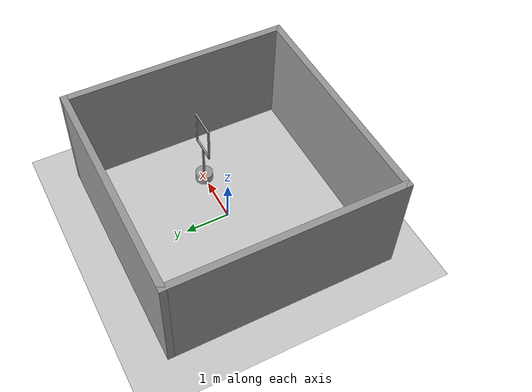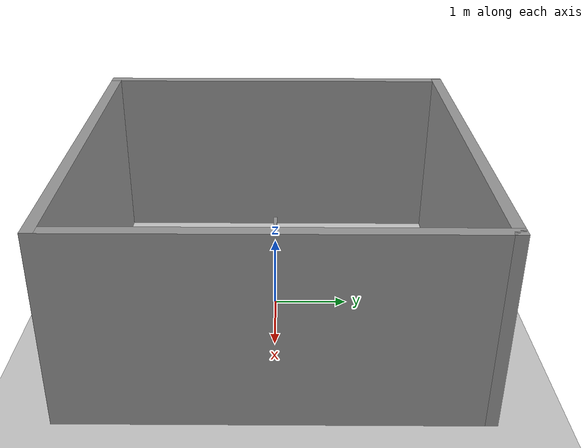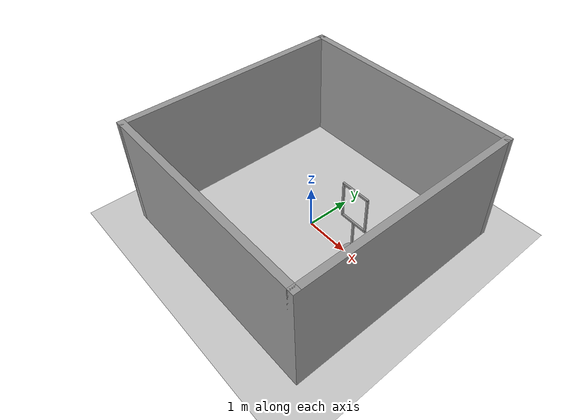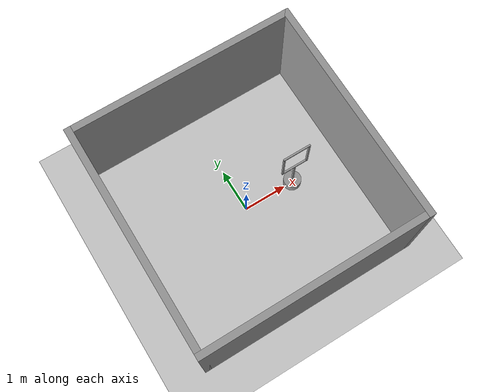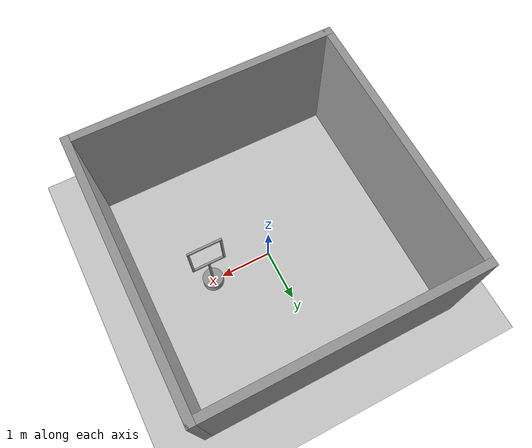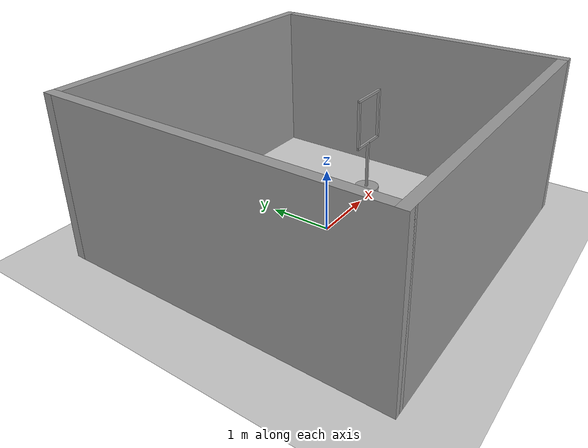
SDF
<sdf version="1.7">
 <world name="default">
  <light name="sun" type="directional">
   <pose>0 0 10 0 -0 0</pose>
   <diffuse>0.8 0.8 0.8 1</diffuse>
   <specular>0.2 0.2 0.2 1</specular>
   <attenuation>
    <range>1000</range>
    <constant>0.9</constant>
    <linear>0.01</linear>
    <quadratic>0.001</quadratic>
   </attenuation>
   <direction>-0.5 0.1 -0.9</direction>
   <spot><inner_angle>0</inner_angle><outer_angle>0</outer_angle><falloff>0</falloff></spot>
  </light>
  <model name="ground_plane">
   <static>1</static>
   <link name="link">
    <collision name="collision">
     <geometry><plane><normal>0 0 1</normal><size>100 100</size></plane></geometry>
     <surface>
      <contact><collide_bitmask>65535</collide_bitmask></contact>
      <friction><ode><mu>100</mu><mu2>50</mu2></ode></friction>
     </surface>
    </collision>
    <visual name="visual">
     <cast_shadows>0</cast_shadows>
     <geometry><plane><normal>0 0 1</normal><size>100 100</size></plane></geometry>
     <material>
      <script><uri>file://media/materials/scripts/gazebo.material</uri><name>Gazebo/Grey</name></script>
     </material>
    </visual>
   </link>
  </model>
  <gravity>0 0 -9.8</gravity>
  <magnetic_field>6e-06 2.3e-05 -4.2e-05</magnetic_field>
  <atmosphere type="adiabatic"/>
  <physics type="ode">
   <max_step_size>0.001</max_step_size>
   <real_time_factor>1</real_time_factor>
   <real_time_update_rate>1000</real_time_update_rate>
  </physics>
  <scene><ambient>0.4 0.4 0.4 1</ambient><background>0.7 0.7 0.7 1</background><shadows>1</shadows></scene>
  <spherical_coordinates>
   <surface_model>EARTH_WGS84</surface_model>
   <latitude_deg>0</latitude_deg>
   <longitude_deg>0</longitude_deg>
   <elevation>0</elevation>
   <heading_deg>0</heading_deg>
  </spherical_coordinates>
  <model name="vicon_room">
   <link name="Wall_0">
    <collision name="Wall_0_Collision">
     <geometry><box><size>5.15 0.15 2.5</size></box></geometry>
     <pose>0 0 1.25 0 -0 0</pose>
    </collision>
    <visual name="Wall_0_Visual">
     <pose>0 0 1.25 0 -0 0</pose>
     <geometry><box><size>5.15 0.15 2.5</size></box></geometry>
     <material>
      <script><uri>file://media/materials/scripts/gazebo.material</uri><name>Gazebo/Grey</name></script>
      <ambient>1 1 1 1</ambient>
     </material>
     <meta><layer>0</layer></meta>
    </visual>
    <pose>0 -2.5 0 0 -0 0</pose>
   </link>
   <link name="Wall_1">
    <collision name="Wall_1_Collision">
     <geometry><box><size>5.15 0.15 2.5</size></box></geometry>
     <pose>0 0 1.25 0 -0 0</pose>
    </collision>
    <visual name="Wall_1_Visual">
     <pose>0 0 1.25 0 -0 0</pose>
     <geometry><box><size>5.15 0.15 2.5</size></box></geometry>
     <material>
      <script><uri>file://media/materials/scripts/gazebo.material</uri><name>Gazebo/Grey</name></script>
      <ambient>1 1 1 1</ambient>
     </material>
     <meta><layer>0</layer></meta>
    </visual>
    <pose>2.5 0 0 0 -0 1.5708</pose>
   </link>
   <link name="Wall_13">
    <collision name="Wall_13_Collision">
     <geometry><box><size>5.15 0.15 2.5</size></box></geometry>
     <pose>0 0 1.25 0 -0 0</pose>
    </collision>
    <visual name="Wall_13_Visual">
     <pose>0 0 1.25 0 -0 0</pose>
     <geometry><box><size>5.15 0.15 2.5</size></box></geometry>
     <material>
      <script><uri>file://media/materials/scripts/gazebo.material</uri><name>Gazebo/Grey</name></script>
      <ambient>1 1 1 1</ambient>
     </material>
     <meta><layer>0</layer></meta>
    </visual>
    <pose>0 2.5 0 0 -0 3.14159</pose>
   </link>
   <link name="Wall_15">
    <collision name="Wall_15_Collision">
     <geometry><box><size>5.15 0.15 2.5</size></box></geometry>
     <pose>0 0 1.25 0 -0 0</pose>
    </collision>
    <visual name="Wall_15_Visual">
     <pose>0 0 1.25 0 -0 0</pose>
     <geometry><box><size>5.15 0.15 2.5</size></box></geometry>
     <material>
      <script><uri>file://media/materials/scripts/gazebo.material</uri><name>Gazebo/Grey</name></script>
      <ambient>1 1 1 1</ambient>
     </material>
     <meta><layer>0</layer></meta>
    </visual>
    <pose>-2.5 0 0 0 -0 -1.5708</pose>
   </link>
   <static>1</static>
  </model>
  <model name="gate_0">
   <link name="link_11">
    <inertial>
     <mass>1</mass>
     <inertia>
      <ixx>0.166667</ixx>
      <ixy>0</ixy>
      <ixz>0</ixz>
      <iyy>0.166667</iyy>
      <iyz>0</iyz>
      <izz>0.166667</izz>
     </inertia>
    </inertial>
    <pose>-0 -0 0.4 0 -0 0</pose>
    <visual name="visual">
     <geometry><box><size>0.04 0.04 0.8</size></box></geometry>
     <material>
      <lighting>1</lighting>
      <script><uri>file://media/materials/scripts/gazebo.material</uri><name>Gazebo/Grey</name></script>
      <shader type="pixel"><normal_map>__default__</normal_map></shader>
      <ambient>1 1 1 1</ambient>
      <diffuse>0.7 0.7 0.7 1</diffuse>
      <specular>0.01 0.01 0.01 1</specular>
      <emissive>0 0 0 1</emissive>
     </material>
    </visual>
    <collision name="collision">
     <geometry><box><size>0.04 0.04 0.8</size></box></geometry>
     <surface>
      <friction>
       <ode><mu>1</mu><mu2>1</mu2><fdir1>0 0 0</fdir1><slip1>0</slip1><slip2>0</slip2></ode>
       <torsional>
        <coefficient>1</coefficient>
        <patch_radius>0</patch_radius>
        <surface_radius>0</surface_radius>
        <use_patch_radius>1</use_patch_radius>
        <ode><slip>0</slip></ode>
       </torsional>
      </friction>
      <bounce><restitution_coefficient>0</restitution_coefficient><threshold>1e+06</threshold></bounce>
      <contact>
       <collide_without_contact>0</collide_without_contact>
       <collide_without_contact_bitmask>1</collide_without_contact_bitmask>
       <collide_bitmask>1</collide_bitmask>
       <ode>
        <soft_cfm>0</soft_cfm>
        <soft_erp>0.2</soft_erp>
        <kp>1e+13</kp>
        <kd>1</kd>
        <max_vel>0.01</max_vel>
        <min_depth>0</min_depth>
       </ode>
       <bullet>
        <split_impulse>1</split_impulse>
        <split_impulse_penetration_threshold>-0.01</split_impulse_penetration_threshold>
        <soft_cfm>0</soft_cfm>
        <soft_erp>0.2</soft_erp>
        <kp>1e+13</kp>
        <kd>1</kd>
       </bullet>
      </contact>
     </surface>
    </collision>
   </link>
   <link name="link_0">
    <inertial>
     <mass>1</mass>
     <inertia><ixx>0.145833</ixx><ixy>0</ixy><ixz>0</ixz><iyy>0.145833</iyy><iyz>0</iyz><izz>0.125</izz></inertia>
    </inertial>
    <pose>-0 0.3 -0.9 2e-06 3e-06 -0.000123</pose>
    <visual name="visual">
     <geometry><cylinder><radius>0.2</radius><length>0.2</length></cylinder></geometry>
     <material>
      <lighting>1</lighting>
      <script><uri>file://media/materials/scripts/gazebo.material</uri><name>Gazebo/Grey</name></script>
      <shader type="pixel"><normal_map>__default__</normal_map></shader>
      <ambient>0.3 0.3 0.3 1</ambient>
      <diffuse>0.7 0.7 0.7 1</diffuse>
      <specular>0.01 0.01 0.01 1</specular>
      <emissive>0 0 0 1</emissive>
     </material>
    </visual>
    <collision name="collision">
     <geometry><cylinder><radius>0.2</radius><length>0.2</length></cylinder></geometry>
     <surface>
      <friction>
       <ode><mu>1</mu><mu2>1</mu2><fdir1>0 0 0</fdir1><slip1>0</slip1><slip2>0</slip2></ode>
       <torsional>
        <coefficient>1</coefficient>
        <patch_radius>0</patch_radius>
        <surface_radius>0</surface_radius>
        <use_patch_radius>1</use_patch_radius>
        <ode><slip>0</slip></ode>
       </torsional>
      </friction>
      <bounce><restitution_coefficient>0</restitution_coefficient><threshold>1e+06</threshold></bounce>
      <contact>
       <collide_without_contact>0</collide_without_contact>
       <collide_without_contact_bitmask>1</collide_without_contact_bitmask>
       <collide_bitmask>1</collide_bitmask>
       <ode>
        <soft_cfm>0</soft_cfm>
        <soft_erp>0.2</soft_erp>
        <kp>1e+13</kp>
        <kd>1</kd>
        <max_vel>0.01</max_vel>
        <min_depth>0</min_depth>
       </ode>
       <bullet>
        <split_impulse>1</split_impulse>
        <split_impulse_penetration_threshold>-0.01</split_impulse_penetration_threshold>
        <soft_cfm>0</soft_cfm>
        <soft_erp>0.2</soft_erp>
        <kp>1e+13</kp>
        <kd>1</kd>
       </bullet>
      </contact>
     </surface>
    </collision>
   </link>
   <link name="link_11_clone">
    <inertial>
     <mass>1</mass>
     <inertia>
      <ixx>0.166667</ixx>
      <ixy>0</ixy>
      <ixz>0</ixz>
      <iyy>0.166667</iyy>
      <iyz>0</iyz>
      <izz>0.166667</izz>
     </inertia>
    </inertial>
    <pose>-0 0.6 0.4 0 -0 0</pose>
    <visual name="visual">
     <geometry><box><size>0.04 0.04 0.8</size></box></geometry>
     <material>
      <lighting>1</lighting>
      <script><uri>file://media/materials/scripts/gazebo.material</uri><name>Gazebo/Grey</name></script>
      <shader type="pixel"><normal_map>__default__</normal_map></shader>
      <ambient>1 1 1 1</ambient>
      <diffuse>0.7 0.7 0.7 1</diffuse>
      <specular>0.01 0.01 0.01 1</specular>
      <emissive>0 0 0 1</emissive>
     </material>
    </visual>
    <collision name="collision">
     <geometry><box><size>0.04 0.04 0.8</size></box></geometry>
     <surface>
      <friction>
       <ode><mu>1</mu><mu2>1</mu2><fdir1>0 0 0</fdir1><slip1>0</slip1><slip2>0</slip2></ode>
       <torsional>
        <coefficient>1</coefficient>
        <patch_radius>0</patch_radius>
        <surface_radius>0</surface_radius>
        <use_patch_radius>1</use_patch_radius>
        <ode><slip>0</slip></ode>
       </torsional>
      </friction>
      <bounce><restitution_coefficient>0</restitution_coefficient><threshold>1e+06</threshold></bounce>
      <contact>
       <collide_without_contact>0</collide_without_contact>
       <collide_without_contact_bitmask>1</collide_without_contact_bitmask>
       <collide_bitmask>1</collide_bitmask>
       <ode>
        <soft_cfm>0</soft_cfm>
        <soft_erp>0.2</soft_erp>
        <kp>1e+13</kp>
        <kd>1</kd>
        <max_vel>0.01</max_vel>
        <min_depth>0</min_depth>
       </ode>
       <bullet>
        <split_impulse>1</split_impulse>
        <split_impulse_penetration_threshold>-0.01</split_impulse_penetration_threshold>
        <soft_cfm>0</soft_cfm>
        <soft_erp>0.2</soft_erp>
        <kp>1e+13</kp>
        <kd>1</kd>
       </bullet>
      </contact>
     </surface>
    </collision>
   </link>
   <link name="link_11_clone_0">
    <inertial>
     <mass>1</mass>
     <inertia>
      <ixx>0.166667</ixx>
      <ixy>0</ixy>
      <ixz>0</ixz>
      <iyy>0.166667</iyy>
      <iyz>0</iyz>
      <izz>0.166667</izz>
     </inertia>
    </inertial>
    <pose>0 0.3 -0.4 2e-06 3e-06 -0.000123</pose>
    <visual name="visual">
     <geometry><box><size>0.04 0.04 0.8</size></box></geometry>
     <material>
      <lighting>1</lighting>
      <script><uri>file://media/materials/scripts/gazebo.material</uri><name>Gazebo/Grey</name></script>
      <shader type="pixel"><normal_map>__default__</normal_map></shader>
      <ambient>1 1 1 1</ambient>
      <diffuse>0.7 0.7 0.7 1</diffuse>
      <specular>0.01 0.01 0.01 1</specular>
      <emissive>0 0 0 1</emissive>
     </material>
    </visual>
    <collision name="collision">
     <geometry><box><size>0.04 0.04 0.8</size></box></geometry>
     <surface>
      <friction>
       <ode><mu>1</mu><mu2>1</mu2><fdir1>0 0 0</fdir1><slip1>0</slip1><slip2>0</slip2></ode>
       <torsional>
        <coefficient>1</coefficient>
        <patch_radius>0</patch_radius>
        <surface_radius>0</surface_radius>
        <use_patch_radius>1</use_patch_radius>
        <ode><slip>0</slip></ode>
       </torsional>
      </friction>
      <bounce><restitution_coefficient>0</restitution_coefficient><threshold>1e+06</threshold></bounce>
      <contact>
       <collide_without_contact>0</collide_without_contact>
       <collide_without_contact_bitmask>1</collide_without_contact_bitmask>
       <collide_bitmask>1</collide_bitmask>
       <ode>
        <soft_cfm>0</soft_cfm>
        <soft_erp>0.2</soft_erp>
        <kp>1e+13</kp>
        <kd>1</kd>
        <max_vel>0.01</max_vel>
        <min_depth>0</min_depth>
       </ode>
       <bullet>
        <split_impulse>1</split_impulse>
        <split_impulse_penetration_threshold>-0.01</split_impulse_penetration_threshold>
        <soft_cfm>0</soft_cfm>
        <soft_erp>0.2</soft_erp>
        <kp>1e+13</kp>
        <kd>1</kd>
       </bullet>
      </contact>
     </surface>
    </collision>
   </link>
   <link name="link_12">
    <inertial>
     <mass>1</mass>
     <inertia>
      <ixx>0.166667</ixx>
      <ixy>0</ixy>
      <ixz>0</ixz>
      <iyy>0.166667</iyy>
      <iyz>0</iyz>
      <izz>0.166667</izz>
     </inertia>
    </inertial>
    <pose>0 0.3 0 0 -0 0</pose>
    <visual name="visual">
     <geometry><box><size>0.04 0.64 0.04</size></box></geometry>
     <material>
      <lighting>1</lighting>
      <script><uri>file://media/materials/scripts/gazebo.material</uri><name>Gazebo/Grey</name></script>
      <shader type="pixel"><normal_map>__default__</normal_map></shader>
      <ambient>1 1 1 1</ambient>
      <diffuse>0.7 0.7 0.7 1</diffuse>
      <specular>0.01 0.01 0.01 1</specular>
      <emissive>0 0 0 1</emissive>
     </material>
    </visual>
    <collision name="collision">
     <geometry><box><size>0.04 0.64 0.04</size></box></geometry>
     <surface>
      <friction>
       <ode><mu>1</mu><mu2>1</mu2><fdir1>0 0 0</fdir1><slip1>0</slip1><slip2>0</slip2></ode>
       <torsional>
        <coefficient>1</coefficient>
        <patch_radius>0</patch_radius>
        <surface_radius>0</surface_radius>
        <use_patch_radius>1</use_patch_radius>
        <ode><slip>0</slip></ode>
       </torsional>
      </friction>
      <bounce><restitution_coefficient>0</restitution_coefficient><threshold>1e+06</threshold></bounce>
      <contact>
       <collide_without_contact>0</collide_without_contact>
       <collide_without_contact_bitmask>1</collide_without_contact_bitmask>
       <collide_bitmask>1</collide_bitmask>
       <ode>
        <soft_cfm>0</soft_cfm>
        <soft_erp>0.2</soft_erp>
        <kp>1e+13</kp>
        <kd>1</kd>
        <max_vel>0.01</max_vel>
        <min_depth>0</min_depth>
       </ode>
       <bullet>
        <split_impulse>1</split_impulse>
        <split_impulse_penetration_threshold>-0.01</split_impulse_penetration_threshold>
        <soft_cfm>0</soft_cfm>
        <soft_erp>0.2</soft_erp>
        <kp>1e+13</kp>
        <kd>1</kd>
       </bullet>
      </contact>
     </surface>
    </collision>
   </link>
   <link name="link_12_clone">
    <inertial>
     <mass>1</mass>
     <inertia>
      <ixx>0.166667</ixx>
      <ixy>0</ixy>
      <ixz>0</ixz>
      <iyy>0.166667</iyy>
      <iyz>0</iyz>
      <izz>0.166667</izz>
     </inertia>
    </inertial>
    <pose>0 0.3 0.8 0 -0 0</pose>
    <visual name="visual">
     <geometry><box><size>0.04 0.64 0.04</size></box></geometry>
     <material>
      <lighting>1</lighting>
      <script><uri>file://media/materials/scripts/gazebo.material</uri><name>Gazebo/Grey</name></script>
      <shader type="pixel"><normal_map>__default__</normal_map></shader>
      <ambient>1 1 1 1</ambient>
      <diffuse>0.7 0.7 0.7 1</diffuse>
      <specular>0.01 0.01 0.01 1</specular>
      <emissive>0 0 0 1</emissive>
     </material>
    </visual>
    <collision name="collision">
     <geometry><box><size>0.04 0.64 0.04</size></box></geometry>
     <surface>
      <friction>
       <ode><mu>1</mu><mu2>1</mu2><fdir1>0 0 0</fdir1><slip1>0</slip1><slip2>0</slip2></ode>
       <torsional>
        <coefficient>1</coefficient>
        <patch_radius>0</patch_radius>
        <surface_radius>0</surface_radius>
        <use_patch_radius>1</use_patch_radius>
        <ode><slip>0</slip></ode>
       </torsional>
      </friction>
      <bounce><restitution_coefficient>0</restitution_coefficient><threshold>1e+06</threshold></bounce>
      <contact>
       <collide_without_contact>0</collide_without_contact>
       <collide_without_contact_bitmask>1</collide_without_contact_bitmask>
       <collide_bitmask>1</collide_bitmask>
       <ode>
        <soft_cfm>0</soft_cfm>
        <soft_erp>0.2</soft_erp>
        <kp>1e+13</kp>
        <kd>1</kd>
        <max_vel>0.01</max_vel>
        <min_depth>0</min_depth>
       </ode>
       <bullet>
        <split_impulse>1</split_impulse>
        <split_impulse_penetration_threshold>-0.01</split_impulse_penetration_threshold>
        <soft_cfm>0</soft_cfm>
        <soft_erp>0.2</soft_erp>
        <kp>1e+13</kp>
        <kd>1</kd>
       </bullet>
      </contact>
     </surface>
    </collision>
   </link>
   <joint name="link_0_JOINT_1" type="fixed">
    <parent>link_0</parent>
    <child>link_11_clone_0</child>
    <physics>
     <ode><limit><cfm>0</cfm><erp>0.2</erp></limit><suspension><cfm>0</cfm><erp>0.2</erp></suspension></ode>
    </physics>
   </joint>
   <joint name="link_11_JOINT_1" type="fixed">
    <parent>link_11</parent>
    <child>link_12_clone</child>
    <physics>
     <ode><limit><cfm>0</cfm><erp>0.2</erp></limit><suspension><cfm>0</cfm><erp>0.2</erp></suspension></ode>
    </physics>
   </joint>
   <joint name="link_11_clone_0_JOINT_0" type="fixed">
    <parent>link_11_clone_0</parent>
    <child>link_12</child>
    <physics>
     <ode><limit><cfm>0</cfm><erp>0.2</erp></limit><suspension><cfm>0</cfm><erp>0.2</erp></suspension></ode>
    </physics>
   </joint>
   <joint name="link_11_clone_JOINT_3" type="revolute">
    <parent>link_11_clone</parent>
    <child>link_12_clone</child>
    <axis>
     <xyz>1 0 0</xyz>
     <limit>
      <lower>-1.79769e+308</lower>
      <upper>1.79769e+308</upper>
      <effort>-1</effort>
      <velocity>-1</velocity>
     </limit>
     <dynamics>
      <spring_reference>0</spring_reference>
      <spring_stiffness>0</spring_stiffness>
      <damping>0</damping>
      <friction>0</friction>
     </dynamics>
    </axis>
    <physics>
     <ode><limit><cfm>0</cfm><erp>0.2</erp></limit><suspension><cfm>0</cfm><erp>0.2</erp></suspension></ode>
    </physics>
   </joint>
   <joint name="link_12_JOINT_0" type="fixed">
    <parent>link_12</parent>
    <child>link_11</child>
    <physics>
     <ode><limit><cfm>0</cfm><erp>0.2</erp></limit><suspension><cfm>0</cfm><erp>0.2</erp></suspension></ode>
    </physics>
   </joint>
   <joint name="link_12_JOINT_2" type="revolute">
    <parent>link_12</parent>
    <child>link_11_clone</child>
    <axis>
     <xyz>1 0 0</xyz>
     <limit>
      <lower>-1.79769e+308</lower>
      <upper>1.79769e+308</upper>
      <effort>-1</effort>
      <velocity>-1</velocity>
     </limit>
     <dynamics>
      <spring_reference>0</spring_reference>
      <spring_stiffness>0</spring_stiffness>
      <damping>0</damping>
      <friction>0</friction>
     </dynamics>
    </axis>
    <physics>
     <ode><limit><cfm>0</cfm><erp>0.2</erp></limit><suspension><cfm>0</cfm><erp>0.2</erp></suspension></ode>
    </physics>
   </joint>
   <static>0</static>
   <pose>1.50031 0.005945 0.999996 1e-06 -0 1.57081</pose>
  </model>
 </world>
</sdf>
